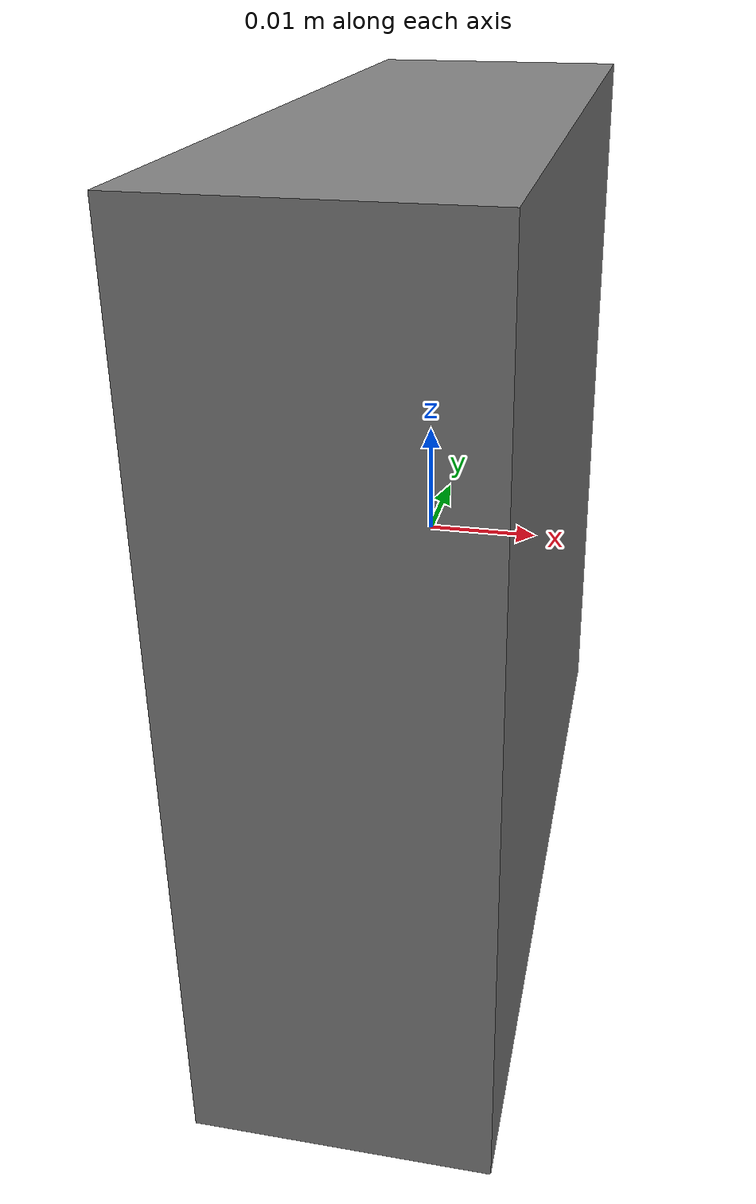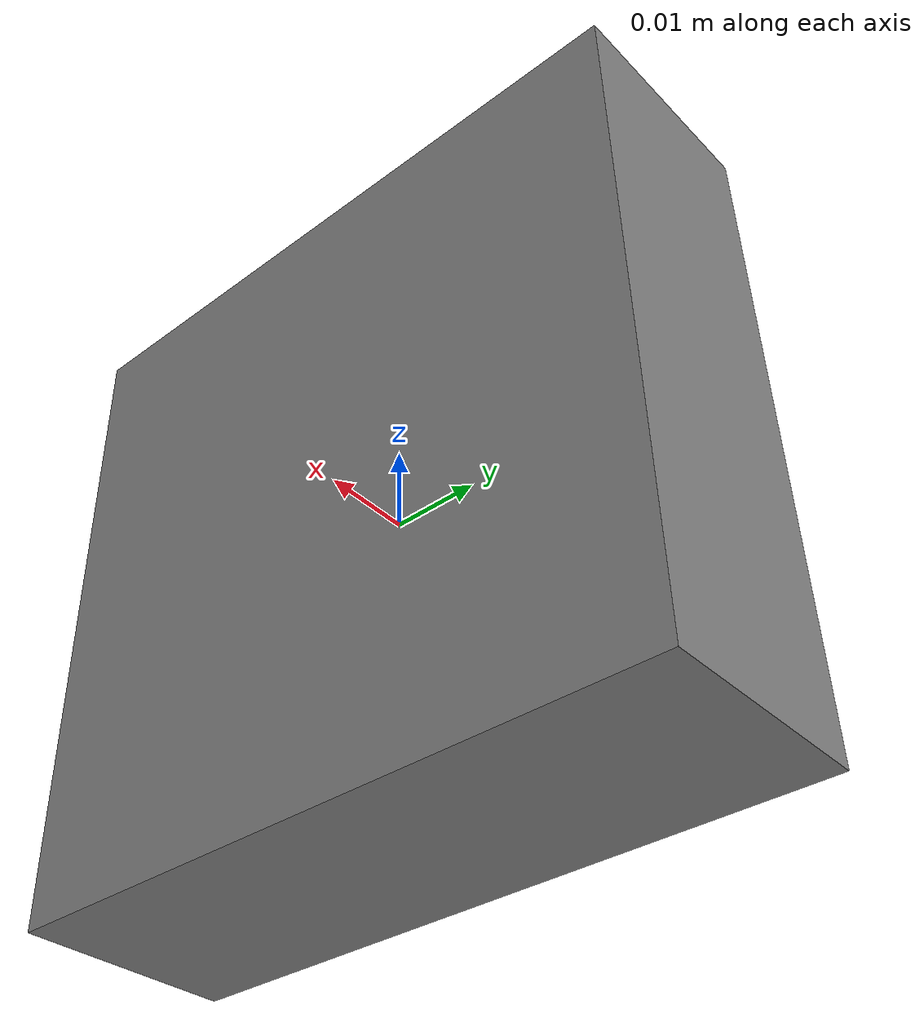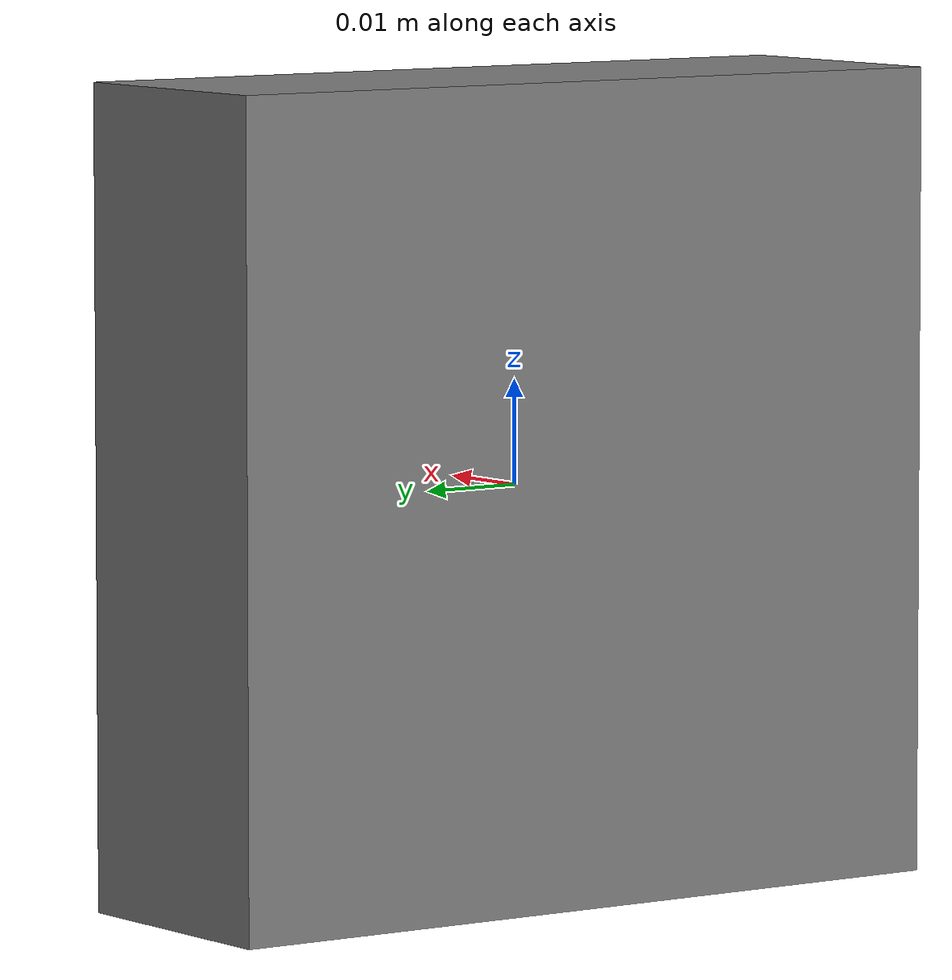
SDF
<?xml version="1.0"?>
<sdf version='1.6'>
<model name="brick">
  <link name="box_base_link">
    <inertial>
      <pose frame=''>0 0 0 0 0 0 </pose>
      <mass>0.028</mass>
        <inertia>
          <ixx>1.17e-5</ixx>
          <ixy>0</ixy>
          <ixz>0</ixz>
          <iyy>1.9e-5</iyy>
          <iyz>0</iyz>
          <izz>1.9e-5</izz>
        </inertia>
    </inertial>
    <visual name='base_link'>
      <pose frame=''>0 0 0 0 0 0</pose>
      <geometry>
        <box>
          <size>0.025 0.077 0.077</size>
        </box>
      </geometry>
      <material>
        <diffuse>0.5 0.5 0.5 1.0</diffuse>
      </material>
    </visual>
    <collision name='box_collision'>
      <pose>0 0 0 0 0 0</pose>
      <geometry>
        <box>
          <size>0.025 0.077 0.077</size>
        </box>
      </geometry>
    </collision>
   </link>
</model>
</sdf>
